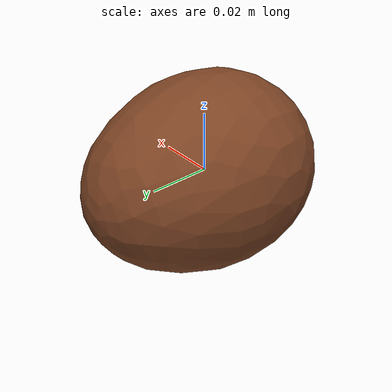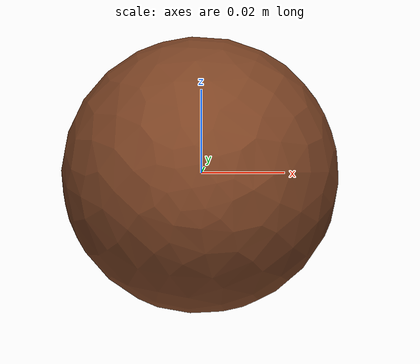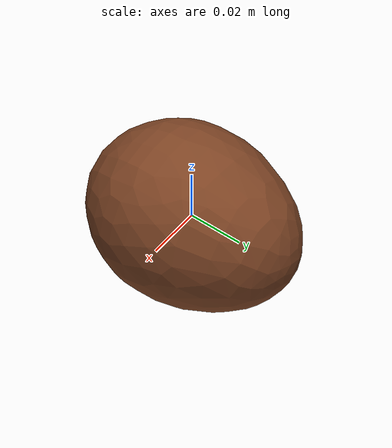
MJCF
<mujoco model="Egg_24">
  <compiler autolimits="true" boundmass="0.01" angle="radian"/>
  <default>
    <default class="/">
      <default class="__VISUAL_MJT__">
        <geom contype="0" conaffinity="0" group="0"/>
      </default>
      <default class="__STRUCTURAL_MJT__">
        <geom contype="8" conaffinity="15" group="4" friction="0.90000000000000002 0.90000000000000002 0.001" solref="0.025000000000000001 1" solimp="0.998 0.998 0.001"/>
      </default>
      <default class="__DYNAMIC_MJT__">
        <geom contype="1" conaffinity="15" group="4" friction="0.90000000000000002 0.90000000000000002 0.001" solref="0.025000000000000001 1" solimp="0.998 0.998 0.001"/>
      </default>
    </default>
  </default>
  <asset>
    <material name="material_Egg6_Mat" class="/" specular="0.5" shininess="0.5" rgba="0.48529410000000001 0.26198510000000003 0.13916519999999999 1"/>
    <mesh name="Egg_24_egg_24" class="/" file="Egg_24_egg_24/Egg_24_egg_24.obj" scale="1 1 1"/>
  </asset>
  <worldbody>
    <body name="Egg_24">
      <joint name="Egg_24_free" class="/" type="free" pos="0 0 0" axis="0 0 1" stiffness="0" range="0 0" armature="0" damping="0.10000000000000001" frictionloss="0"/>
      <body name="Egg_24_egg_24" pos="-0 0 -0.00011" quat="1 0 0 0">
        <geom name="Egg_24_egg_24" class="__VISUAL_MJT__" type="mesh" material="material_Egg6_Mat" shellinertia="true" mesh="Egg_24_egg_24"/>
        <geom name="Egg_24_PrimitiveCollider_0" class="__DYNAMIC_MJT__" type="capsule" size="0.029877623543143272 0.010574938729405403" rgba="0 1 0 1" pos="-0 0 0" quat="0.70710678118654757 0.70710678118654746 0 0"/>
      </body>
    </body>
  </worldbody>
</mujoco>
